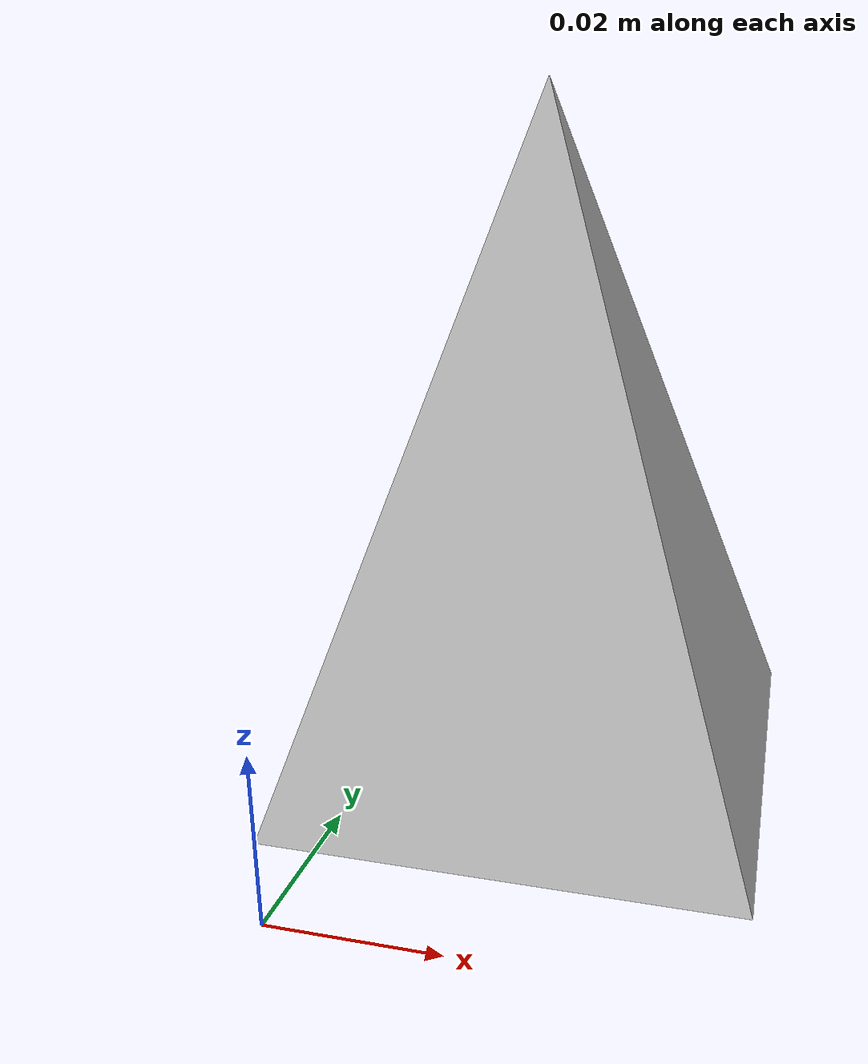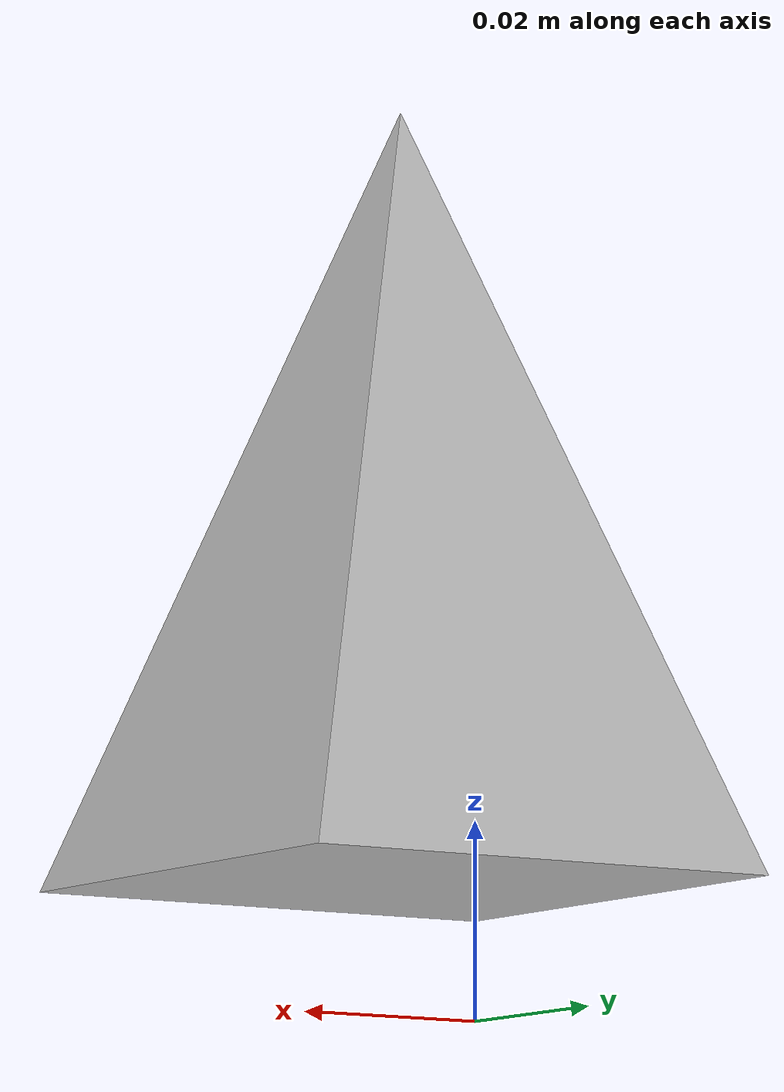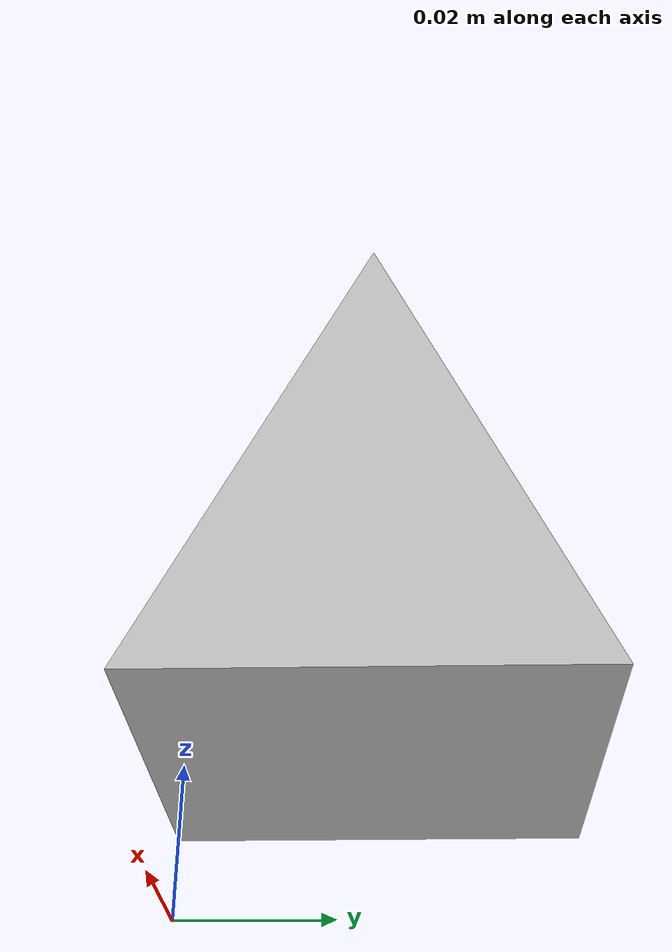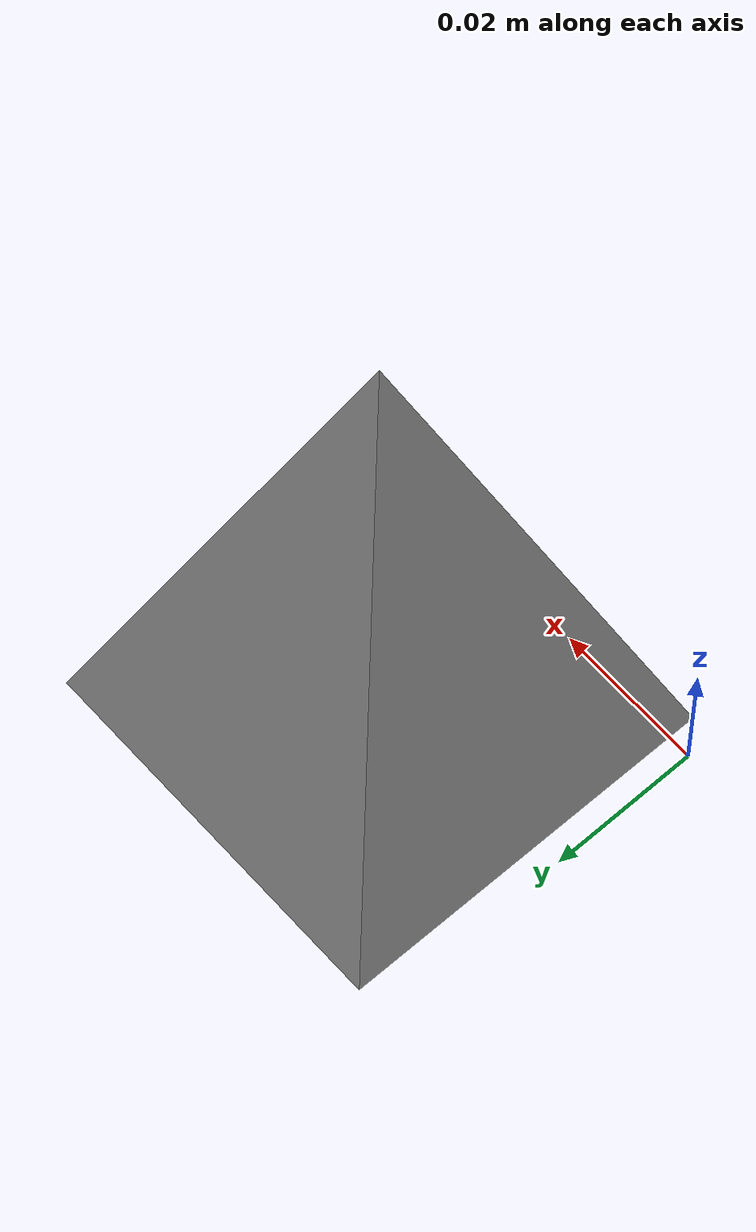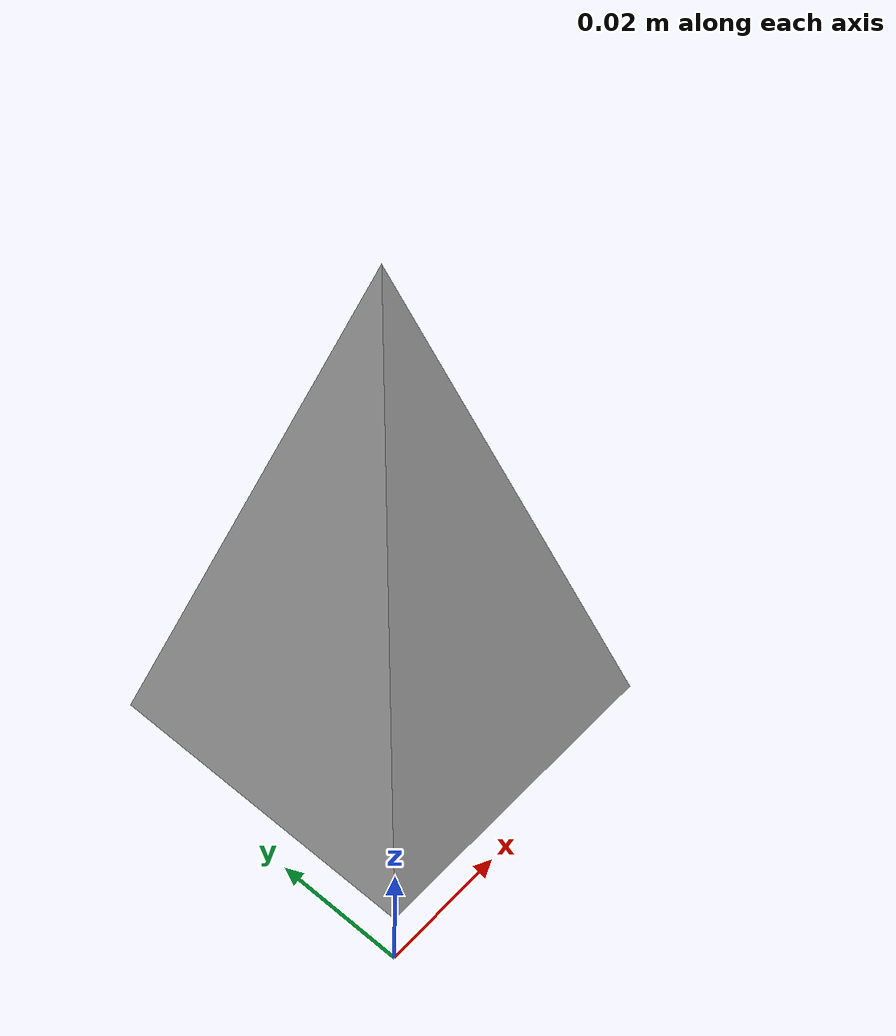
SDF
<sdf version='1.6'>
  <model name='pyramid'>
    <link name='object'>
      <pose frame=''>0 0 0.01 0 -0 0</pose>
      <inertial>
        <pose frame=''>0.025 0.025 0.018679 0 -0 0</pose>
        <mass>0.062264</mass>
        <inertia>
          <ixx>2.0818e-05</ixx>
          <ixy>-5.16988e-23</ixy>
          <ixz>2.92321e-22</ixz>
          <iyy>2.0818e-05</iyy>
          <iyz>1.06306e-21</iyz>
          <izz>1.55661e-05</izz>
        </inertia>
      </inertial>
      <collision name='object_collision'>
        <pose frame=''>0 0 0 1.5708 -0 0</pose>
        <geometry>
          <mesh>
            <scale>1 1 1</scale>
            <uri>model://pyramid/untitled.dae</uri>
          </mesh>
        </geometry>
        <surface>
          <friction>
            <ode>
              <mu>1.0</mu>
              <mu2>1.0</mu2>
            </ode>
          </friction>
          <contact>
            <ode>
              <kp>100000.0</kp>
              <kd>1.0</kd>
              <min_depth>0.0000001</min_depth>
              <max_vel>0.1</max_vel>
            </ode>
          </contact>
        </surface>
      </collision>
      <visual name='object_visual'>
        <pose frame=''>0 0 0 1.5708 -0 0</pose>
        <geometry>
          <mesh>
            <scale>1 1 1</scale>
            <uri>model://pyramid/untitled.dae</uri>
          </mesh>
        </geometry>
      </visual>
    </link>
  </model>
</sdf>
